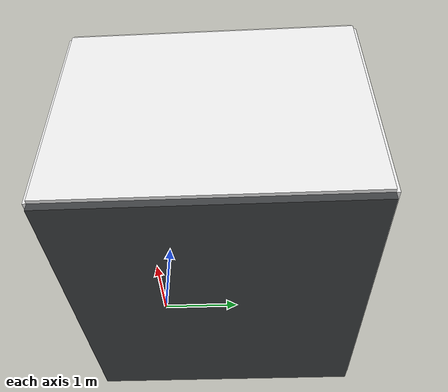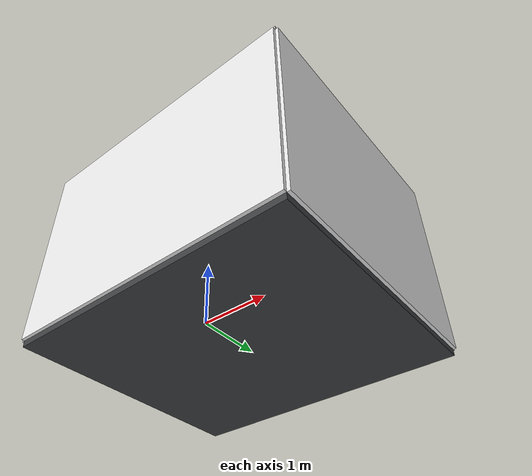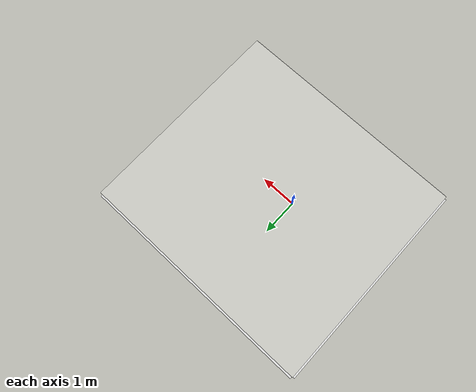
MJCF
<mujoco model="TinyRacer circle obstacle room">
  <option integrator="RK4" density="1.225" viscosity="1.8e-5" timestep="0.001"/>
  <compiler inertiafromgeom="false" autolimits="true" angle="degree"/>
  <statistic center="0 0.75 1.5" extent="4.5"/>
  <visual>
    <headlight diffuse="0.14 0.14 0.14" ambient="0.09 0.09 0.09"
               specular="0 0 0"/>
    <global azimuth="135" elevation="-24" ellipsoidinertia="true"/>
  </visual>

  <asset>
    <texture name="circle_floor_texture" type="2d" builtin="checker"
             rgb1="0.28 0.29 0.30" rgb2="0.20 0.21 0.22"
             width="512" height="512"/>
    <texture name="circle_wall_texture" type="2d"
             file="textures/off_white_painted_plaster.png"/>
    <material name="circle_floor" texture="circle_floor_texture"
              texrepeat="8 8" texuniform="true" reflectance="0.10"
              specular="0.15" shininess="0.20"/>
    <material name="circle_wall" texture="circle_wall_texture"
              texrepeat="4 2" texuniform="true" rgba="1 1 1 1"
              specular="0.07" shininess="0.10"/>
    <material name="circle_ceiling" rgba="0.83 0.83 0.80 1"
              specular="0.03" shininess="0.06"/>
    <material name="strip_light" rgba="1 0.98 0.87 1"
              emission="1" specular="0" shininess="0"/>
  </asset>

  <worldbody>
    <camera name="circle_room_preview" pos="0 -3.8 2.8"
            xyaxes="1 0 0 0 0.48 0.88" fovy="52"/>

    <geom name="circle_room_floor" type="box" pos="0 0.75 -0.05"
          size="2.30 2.05 0.05" material="circle_floor"
          contype="1" conaffinity="1"/>
    <geom name="circle_room_west_wall" type="box" pos="-2.30 0.75 1.6"
          size="0.05 2.05 1.6" material="circle_wall"
          contype="1" conaffinity="1"/>
    <geom name="circle_room_east_wall" type="box" pos="2.30 0.75 1.6"
          size="0.05 2.05 1.6" material="circle_wall"
          contype="1" conaffinity="1"/>
    <geom name="circle_room_south_wall" type="box" pos="0 -1.30 1.6"
          size="2.30 0.05 1.6" material="circle_wall"
          contype="1" conaffinity="1"/>
    <geom name="circle_room_north_wall" type="box" pos="0 2.80 1.6"
          size="2.30 0.05 1.6" material="circle_wall"
          contype="1" conaffinity="1"/>
    <geom name="circle_room_ceiling" type="box" pos="0 0.75 3.25"
          size="2.30 2.05 0.05" material="circle_ceiling"
          contype="1" conaffinity="1"/>

    <geom name="circle_obstacle_1" type="box" pos="0.59 0.47 1.5"
          size="0.10 0.14 0.85" rgba="0.78 0.20 0.12 1"
          contype="1" conaffinity="1"/>
    <geom name="circle_obstacle_2" type="box" pos="0.28 1.30 1.5"
          size="0.12 0.10 0.85" rgba="0.12 0.34 0.76 1"
          contype="1" conaffinity="1"/>
    <geom name="circle_obstacle_3" type="box" pos="-0.60 1.09 1.5"
          size="0.10 0.14 0.85" rgba="0.82 0.55 0.10 1"
          contype="1" conaffinity="1"/>

    <geom name="circle_ceiling_strip" type="box" pos="0 0.75 3.185"
          size="1.75 0.06 0.015" material="strip_light"
          contype="0" conaffinity="0"/>
    <light name="circle_light_south" pos="0 -0.65 3.12" dir="0 0 -1"
           diffuse="0.86 0.83 0.74" specular="0.10 0.10 0.08"
           cutoff="78" exponent="1" attenuation="0.25 0.08 0.02"
           castshadow="true"/>
    <light name="circle_light_center" pos="0 0.75 3.12" dir="0 0 -1"
           diffuse="0.86 0.83 0.74" specular="0.10 0.10 0.08"
           cutoff="78" exponent="1" attenuation="0.25 0.08 0.02"
           castshadow="true"/>
    <light name="circle_light_north" pos="0 2.15 3.12" dir="0 0 -1"
           diffuse="0.86 0.83 0.74" specular="0.10 0.10 0.08"
           cutoff="78" exponent="1" attenuation="0.25 0.08 0.02"
           castshadow="true"/>
  </worldbody>
</mujoco>
